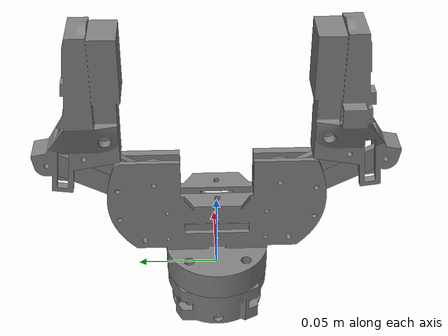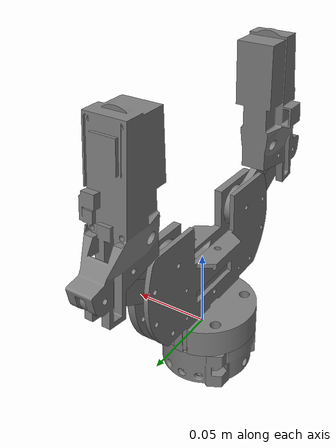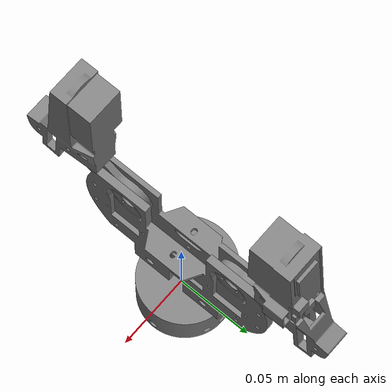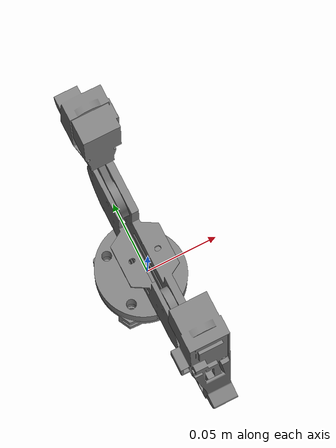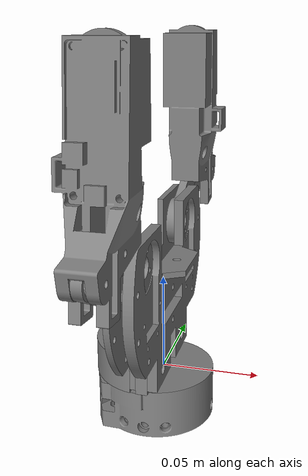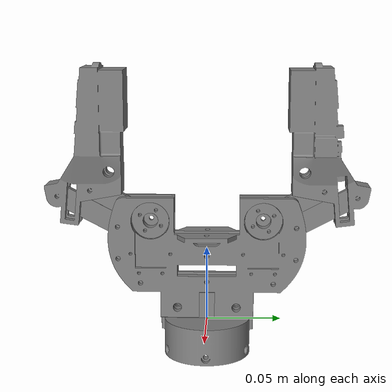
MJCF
<mujoco model="magpie_eflesh_gripper_h12">
  <compiler meshdir="../meshes/magpie/" autolimits="true"/>

  <visual>
    <headlight ambient=".4 .4 .4" diffuse=".8 .8 .8" specular="0.1 0.1 0.1"/>
    <map znear=".01"/>
    <quality shadowsize="2048"/>
    <global elevation="-15"/>
  </visual>

  <asset>
    <texture name="blue_grid" type="2d" builtin="checker" rgb1=".02 .14 .44" rgb2=".27 .55 1" width="300" height="300" mark="edge" markrgb="1 1 1"/>
    <material name="blue_grid" texture="blue_grid" texrepeat="1 1" texuniform="true" reflectance=".2"/>

    <texture name="grey_grid" type="2d" builtin="checker" rgb1=".26 .26 .26" rgb2=".6 .6 .6" width="300" height="300" mark="edge" markrgb="1 1 1"/>
    <material name="grey_grid" texture="grey_grid" texrepeat="1 1" texuniform="true" reflectance=".2"/>
    <texture name="skybox" type="skybox" builtin="gradient" rgb1=".66 .79 1" rgb2=".9 .91 .93" width="800" height="800"/>

    <!-- Magpie gripper meshes (prefixed names for include compatibility) -->
    <mesh class="magpie" name="h12_mount" file="magpie_h12.stl" scale="0.001 0.001 0.001"/>
    <mesh class="magpie" name="magpie_mount" file="mount.stl" scale="0.001 0.001 0.001"/>
    <mesh class="magpie" name="magpie_base_bot" file="base_bot.stl" scale="0.001 0.001 0.001"/>
    <mesh class="magpie" name="magpie_base_top" file="base_top.stl" scale="0.001 0.001 0.001"/>
    <mesh class="magpie" name="magpie_left_crank" file="left_crank.stl" scale="0.001 0.001 0.001"/>
    <mesh class="magpie" name="magpie_right_crank" file="right_crank.stl" scale="0.001 0.001 0.001"/>
    <mesh class="magpie" name="magpie_left_finger" file="left_finger_eflesh.stl" scale="0.001 0.001 0.001"/>
    <mesh class="magpie" name="magpie_right_finger" file="right_finger_eflesh.stl" scale="0.001 0.001 0.001"/>
    <mesh class="magpie" name="magpie_left_rocker" file="left_rocker.stl" scale="0.001 0.001 0.001"/>
    <mesh class="magpie" name="magpie_right_rocker" file="right_rocker.stl" scale="0.001 0.001 0.001"/>
  </asset>

  <default>
    <default class="magpie">
      <material specular="0.5" shininess="0.25"/>
      <default class="visual">
        <geom type="mesh" contype="0" conaffinity="0" group="2"/>
      </default>
      <default class="collision">
        <geom type="capsule" group="3"/>
        <default class="eef_collision">
          <geom type="cylinder"/>
        </default>

      </default>
      <site size="0.001" rgba="0.5 0.5 0.5 0.3" group="4"/>
    </default>
  </default>

  <worldbody>
    <geom type="mesh" contype="0" conaffinity="0" group="1" density="0" pos="-0.003125 0 -0.025" mesh="h12_mount"/>
    <geom name="h12_collision" size="0.032 0.0125" pos="-0.003125  0. -0.0125" density="0" type="cylinder" class="collision" />
    <!-- Include the gripper body hierarchy -->
    <include file="magpie_gripper_eflesh.xml"/>
  </worldbody>

  <equality>
    <!-- Connect constraints close the 4-bar loop by pinning rocker to base at pivot4 (rocker-base) -->
    <!-- Anchor is in body1 (base_top) frame, from CAD with axis transform -->
    <!-- Left:  CAD (-60.0, -0.750, 65.0) -> MuJoCo (-0.00075, 0.060, 0.065) -->
    <!-- Right: CAD (60.0, -0.750, 65.0)  -> MuJoCo (-0.00075, -0.060, 0.065) -->
    <connect name="left_4bar_close" active="true" body1="base_top" body2="left_rocker" anchor="-0.00075 0.060 0.065"/>
    <connect name="right_4bar_close" active="true" body1="base_top" body2="right_rocker" anchor="-0.00075 -0.060 0.065"/>
  </equality>

  <actuator>
    <!-- Position actuators drive the crank (hinge_1) to control finger position -->
    <!-- ctrlrange maps to joint range; kp is position gain -->
    <position name="left_finger_actuator" joint="left_hinge_1" ctrlrange="-0.035 2.70" kp="10"/>
    <position name="right_finger_actuator" joint="right_hinge_1" ctrlrange="-2.70 0.035" kp="10"/>
  </actuator>
</mujoco>

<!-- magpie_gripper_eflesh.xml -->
<!-- Magpie gripper body hierarchy - designed to be included in other models -->
<!-- Include this inside a parent body to attach the gripper -->
<!-- Requires mesh assets: magpie_mount, magpie_base_bot, magpie_base_top, -->
<!--   magpie_left_crank, magpie_right_crank, magpie_left_finger, magpie_right_finger, -->
<!--   magpie_left_rocker, magpie_right_rocker -->

<body name="mount">
  <site name="eeff" pos="-0.004 0 0.193" group="3"/>
  <geom type="mesh" class="visual" mesh="magpie_mount" xyaxes="0 -1 0 1 0 0"/>
  <geom type="mesh" class="collision" mesh="magpie_mount" xyaxes="0 -1 0 1 0 0"/>
  <body name="base_bot">
    <geom type="mesh" class="visual" mesh="magpie_base_bot" xyaxes="0 -1 0 1 0 0"/>
    <geom type="mesh" class="collision" mesh="magpie_base_bot" xyaxes="0 -1 0 1 0 0"/>
    <body name="base_top">
      <geom type="mesh" class="visual" mesh="magpie_base_top" xyaxes="0 -1 0 1 0 0"/>
      <geom type="mesh" class="collision" mesh="magpie_base_top" xyaxes="0 -1 0 1 0 0"/>

      <!-- Left 4-bar mechanism: base_top -> crank -> finger -> rocker -->
      <!-- Pivots: 1=crank-base(0.00175,0.038,0.069), 2=finger-inner(-0.00675,0.077824,0.089953) -->
      <!--         3=finger-outer(-0.00675,0.099824,0.085954), 4=rocker-base(-0.00075,0.060,0.065) -->
      <body name="left_crank" pos="0.00175 0.038 0.069">
        <joint name="left_hinge_1" pos="0 0 0" axis="1 0 0" range="-0.035 2.05"/>
        <geom type="mesh" class="visual" mesh="magpie_left_crank" pos="-0.00175 -0.038 -0.069" xyaxes="0 -1 0 1 0 0"/>
        <geom type="mesh" class="collision" mesh="magpie_left_crank" pos="-0.00175 -0.038 -0.069" xyaxes="0 -1 0 1 0 0"/>
        <body name="left_finger_combined" pos="-0.0085 0.039824 0.020953">
          <joint name="left_hinge_2" pos="0 0 0" axis="1 0 0"/>
          <geom type="mesh" class="visual" mesh="magpie_left_finger" pos="0.00675 -0.077824 -0.089953" xyaxes="0 -1 0 1 0 0"/>
          <geom type="mesh" class="collision" mesh="magpie_left_finger" pos="0.00675 -0.077824 -0.089953" xyaxes="0 -1 0 1 0 0"/>
          <body name="left_rocker" pos="0 0.022 -0.003999">
            <joint name="left_hinge_3" pos="0 0 0" axis="1 0 0"/>
            <geom type="mesh" class="visual" mesh="magpie_left_rocker" pos="0.00675 -0.099824 -0.085954" xyaxes="0 -1 0 1 0 0"/>
            <geom type="mesh" class="collision" mesh="magpie_left_rocker" pos="0.00675 -0.099824 -0.085954" xyaxes="0 -1 0 1 0 0"/>
          </body>
        </body>
      </body>

      <!-- Right 4-bar mechanism: base_top -> crank -> finger -> rocker -->
      <!-- Pivots: 1=crank-base(0.00175,-0.038,0.069), 2=finger-inner(-0.00675,-0.077824,0.089953) -->
      <!--         3=finger-outer(-0.00675,-0.099824,0.085954), 4=rocker-base(-0.00075,-0.060,0.065) -->
      <body name="right_crank" pos="0.00175 -0.038 0.069">
        <joint name="right_hinge_1" pos="0 0 0" axis="1 0 0" range="-2.05 0.035"/>
        <geom type="mesh" class="visual" mesh="magpie_right_crank" pos="-0.00175 0.038 -0.069" xyaxes="0 -1 0 1 0 0"/>
        <geom type="mesh" class="collision" mesh="magpie_right_crank" pos="-0.00175 0.038 -0.069" xyaxes="0 -1 0 1 0 0"/>
        <body name="right_finger_combined" pos="-0.0085 -0.039824 0.020953">
          <joint name="right_hinge_2" pos="0 0 0" axis="1 0 0"/>
          <geom type="mesh" class="visual" mesh="magpie_right_finger" pos="0.00675 0.077824 -0.089953" xyaxes="0 -1 0 1 0 0"/>
          <geom type="mesh" class="collision" mesh="magpie_right_finger" pos="0.00675 0.077824 -0.089953" xyaxes="0 -1 0 1 0 0"/>
          <body name="right_rocker" pos="0 -0.022 -0.003999">
            <joint name="right_hinge_3" pos="0 0 0" axis="1 0 0"/>
            <geom type="mesh" class="visual" mesh="magpie_right_rocker" pos="0.00675 0.099824 -0.085954" xyaxes="0 -1 0 1 0 0"/>
            <geom type="mesh" class="collision" mesh="magpie_right_rocker" pos="0.00675 0.099824 -0.085954" xyaxes="0 -1 0 1 0 0"/>
          </body>
        </body>
      </body>

    </body>
  </body>
</body>
